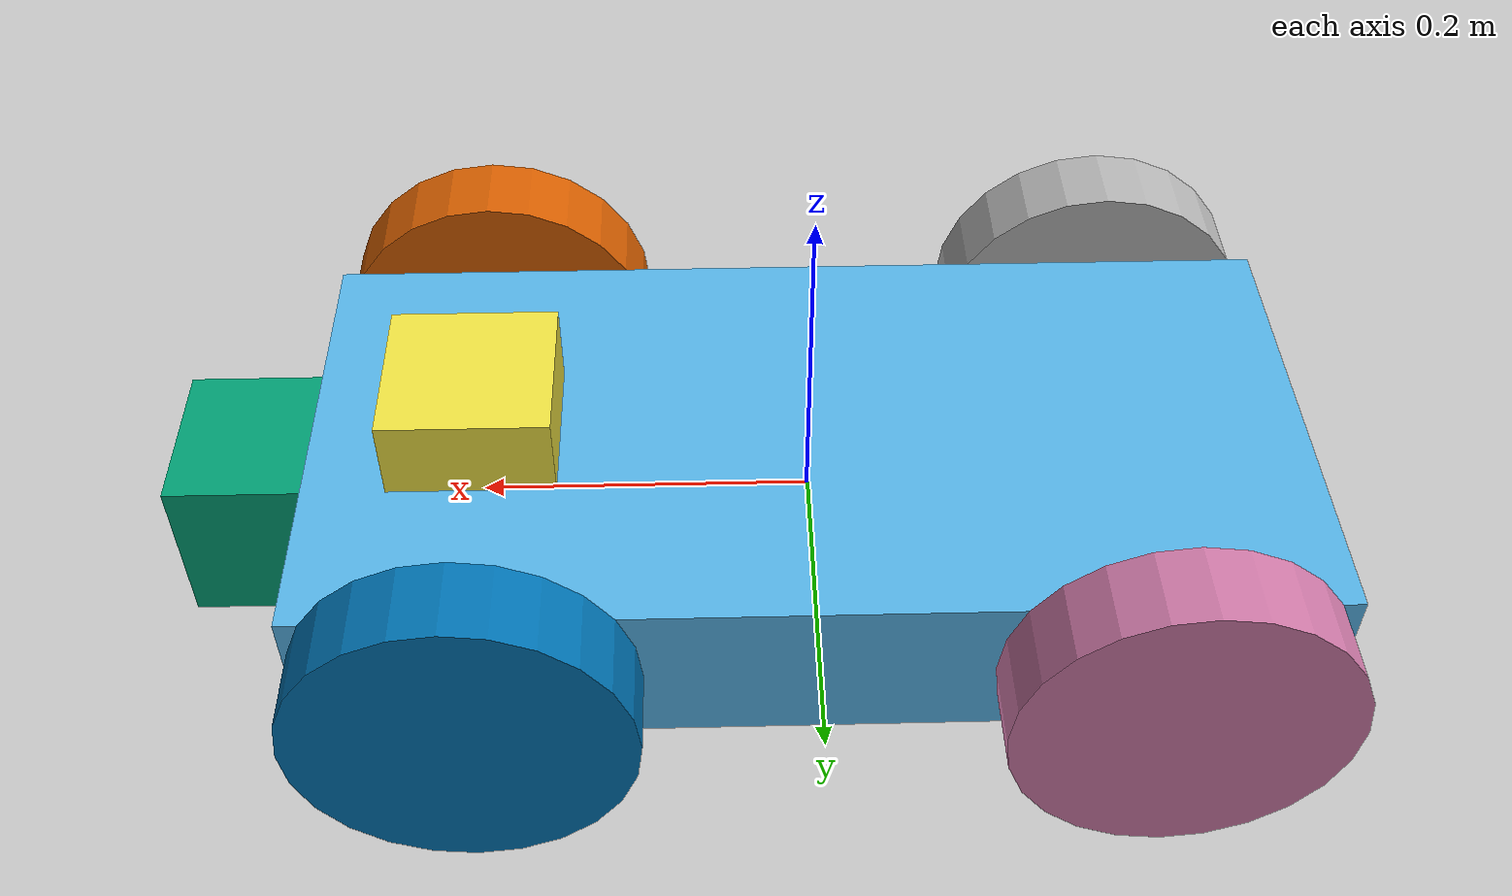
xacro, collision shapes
<?xml version='1.0'?>

<robot name="my_robot" xmlns:xacro="http://www.ros.org/wiki/xacro">
<xacro:include filename="$(find my_robot)/urdf/my_robot.gazebo" />

  <link name="robot_footprint"></link>

  <joint name="robot_footprint_joint" type="fixed">
    <origin xyz="0 0 0" rpy="0 0 0" />
    <parent link="robot_footprint"/>
    <child link="chassis" />
  </joint>
  <!-- #################### Chasis x = 0.6    y = 0.3   z = 0.1 ######################## -->
  <link name='chassis'>
    <pose>0 0 0.1 0 0 0</pose>

    <inertial>
      <mass value="15.0"/>
      <origin xyz="0.0 0 0" rpy=" 0 0 0"/>
      <inertia
          ixx="0.1" ixy="0" ixz="0"
          iyy="0.1" iyz="0"
          izz="0.1"
      />
    </inertial>

    <collision name='collision'>
      <origin xyz="0 0 0" rpy=" 0 0 0"/>
      <geometry>
        <box size=".6 .3 .1"/>
      </geometry>
    </collision>

    <visual name='chassis_visual'>
      <origin xyz="0 0 0" rpy=" 0 0 0"/>
      <geometry>
        <box size=".6 .3 .1"/>
      </geometry>
    </visual>

    <collision name='back_caster_collision'>
      <origin xyz="-0.15 0 -0.05" rpy=" 0 0 0"/>
      <geometry>
        <sphere radius="0.0499"/>
      </geometry>
    </collision>

    <visual name='back_caster_visual'>
      <origin xyz="-0.15 0 -0.05" rpy=" 0 0 0"/>
      <geometry>
        <sphere radius="0.05"/>
      </geometry>
    </visual>

    <collision name='front_caster_collision'>
      <origin xyz="0.15 0 -0.05" rpy=" 0 0 0"/>
      <geometry>
        <sphere radius="0.0499"/>
      </geometry>
    </collision>

    <visual name='front_caster_visual'>
      <origin xyz="0.15 0 -0.05" rpy=" 0 0 0"/>
      <geometry>
        <sphere radius="0.05"/>
      </geometry>
    </visual>
  </link>

  <!-- #################### Camera & Lidar ######################## -->
  <link name="camera">
    <inertial>
      <mass value="0.1"/>
      <origin xyz="0 0 0" rpy="0 0 3.14" />
      <inertia
        ixx="0.1" ixy="0" ixz="0"
        iyy="0.1" iyz="0"
        izz="0.1"
      />
    </inertial>

    <visual name="visual_camera">
      <origin xyz="0 0 0" rpy=" 0 0 3.14"/>
      <geometry>
        <mesh filename="package://my_robot/meshes/camera.dae" scale="0.01 0.01 0.015"/>
      </geometry>
    </visual>

    <collision>
      <origin xyz="0 0 0" rpy=" 0 0 0"/>
      <geometry>
        <box size=".1 .1 .1"/>
      </geometry>
    </collision>
  </link>

  <link name="hokuyo">
    <inertial>
      <mass value="0.1"/>
      <origin xyz="0 0 0.125" rpy="0 0 0" />
      <inertia
        ixx="0" ixy="0" ixz="0"
        iyy="0" iyz="0" izz="0"
      />
    </inertial>

    <visual>
      <origin xyz="0 0 0" rpy=" 0 0 0"/>
      <geometry>
        <mesh filename = "package://my_robot/meshes/hokuyo.dae"/>
      </geometry>
    </visual>

    <collision>
      <origin xyz="0 0 0" rpy=" 0 0 0"/>
      <geometry>
        <box size=".1 .1 .1"/>
      </geometry>
    </collision>
  </link>

  <joint name="JOINT_camera" type="fixed">
    <parent link="robot_footprint"/>
    <child link="camera"/>
    <origin xyz="0.33 0 0" rpy="0 0 0" />
    <axis xyz="1 0 0" rpy="0 0 0"/>
  </joint>

  <joint name="JOINT_lidar" type="fixed">
    <parent link="robot_footprint"/>
    <child link="hokuyo"/>
    <origin xyz="0.2 0 0.05" rpy="0 0 0" />
    <axis xyz="1 0 0" rpy="0 0 0"/>
  </joint>

  <!-- #################### Wheels ######################## -->

  <link name="front_left_wheel">
    <pose>0 0 0 0 0 0</pose>

    <inertial>
      <mass value="5.0"/>
      <origin xyz="0.0 0 0" rpy=" 0 1.5707 1.5707"/>
      <inertia
          ixx="0.1" ixy="0" ixz="0"
          iyy="0.1" iyz="0"
          izz="0.1"
      />
    </inertial>

    <visual>
      <origin xyz="0 0 0" rpy=" 0 1.5707 1.5707"/>
      <geometry>
        <mesh filename="package://my_robot/meshes/wheel.dae" scale="0.03 0.03 0.03"/>
      </geometry>
    </visual>

    <collision name="collision_front_left_wheel">
      <origin xyz="0 0 0" rpy=" 0 1.5707 1.5707"/>
      <geometry>
        <cylinder radius="0.1" length="0.05"/>
      </geometry>
    </collision>
  </link>

  <link name="front_right_wheel">
    <pose>0 0 0 0 0 0</pose>

    <inertial>
      <mass value="5.0"/>
      <origin xyz="0.0 0 0" rpy=" 3.14 1.5707 1.5707"/>
      <inertia
          ixx="0.1" ixy="0" ixz="0"
          iyy="0.1" iyz="0"
          izz="0.1"
      />
    </inertial>

    <visual>
      <origin xyz="0 0 0" rpy=" 3.14 1.5707 1.5707"/>
      <geometry>
        <mesh filename="package://my_robot/meshes/wheel.dae" scale="0.03 0.03 0.03"/>
      </geometry>
    </visual>

    <collision>
      <origin xyz="0 0 0" rpy=" 0 1.5707 1.5707"/>
      <geometry>
        <cylinder radius="0.1" length="0.05"/>
      </geometry>
    </collision>
  </link>

  <link name="back_left_wheel">
    <pose>0 0 0 0 0 0</pose>

    <inertial>
      <mass value="5.0"/>
      <origin xyz="0.0 0 0" rpy=" 0 1.5707 1.5707"/>
      <inertia
          ixx="0.1" ixy="0" ixz="0"
          iyy="0.1" iyz="0"
          izz="0.1"
      />
    </inertial>

    <visual>
      <origin xyz="0 0 0" rpy=" 0 1.5707 1.5707"/>
      <geometry>
        <mesh filename="package://my_robot/meshes/wheel.dae" scale="0.03 0.03 0.03"/>
      </geometry>
    </visual>

    <collision>
      <origin xyz="0 0 0" rpy=" 0 1.5707 1.5707"/>
      <geometry>
        <cylinder radius="0.1" length="0.05"/>
      </geometry>
    </collision>
  </link>

  <link name="back_right_wheel">
    <pose>0 0 0 0 0 0</pose>

    <inertial>
      <mass value="5.0"/>
      <origin xyz="0.0 0 0" rpy=" 3.14 1.5707 1.5707"/>
      <inertia
          ixx="0.1" ixy="0" ixz="0"
          iyy="0.1" iyz="0"
          izz="0.1"
      />
    </inertial>

    <visual>
      <origin xyz="0 0 0" rpy=" 3.14 1.5707 1.5707"/>
      <geometry>
        <mesh filename="package://my_robot/meshes/wheel.dae" scale="0.03 0.03 0.03"/>
      </geometry>
    </visual>

    <collision>
      <origin xyz="0 0 0" rpy=" 0 1.5707 1.5707"/>
      <geometry>
        <cylinder radius="0.1" length="0.05"/>
      </geometry>
    </collision>
  </link>

  <joint name="JOINT_front_left_wheel" type="continuous">
    <parent link="robot_footprint"/>
    <child link="front_left_wheel"/>
    <origin xyz=".2 0.175 0" rpy="0 0 0"/>
    <axis xyz="0 1 0" rpy="0 0 0"/>
    <limit effort="10000" velocity="1000"/>
    <dynamics damping="1.0" friction="1.0"/>
  </joint>

  <joint name="JOINT_front_right_wheel" type="continuous">
    <parent link="robot_footprint"/>
    <child link="front_right_wheel"/>
    <origin xyz=".2 -0.175 0" rpy="0 0 0"/>
    <axis xyz="0 1 0" rpy="0 0 0"/>
    <limit effort="10000" velocity="1000"/>
    <dynamics damping="1.0" friction="1.0"/>
  </joint>

  <joint name="JOINT_back_left_wheel" type="continuous">
    <parent link="robot_footprint"/>
    <child link="back_left_wheel"/>
    <origin xyz="-.2 0.175 0" rpy="0 0 0"/>
    <axis xyz="0 1 0" rpy="0 0 0"/>
    <limit effort="10000" velocity="1000"/>
    <dynamics damping="1.0" friction="1.0"/>
  </joint>

  <joint name="JOINT_back_right_wheel" type="continuous">
    <parent link="robot_footprint"/>
    <child link="back_right_wheel"/>
    <origin xyz="-.2 -0.175 0" rpy="0 0 0"/>
    <axis xyz="0 1 0" rpy="0 0 0"/>
    <limit effort="10000" velocity="1000"/>
    <dynamics damping="1.0" friction="1.0"/>
  </joint>

</robot>
